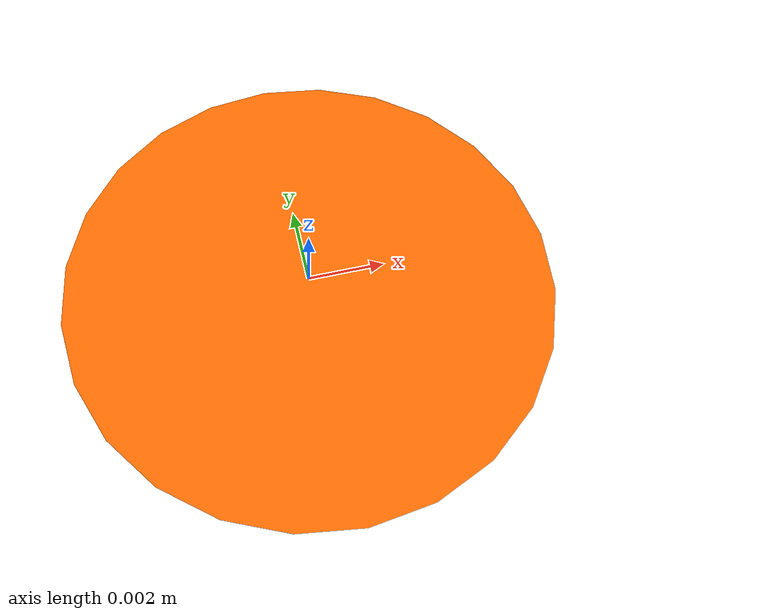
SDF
<?xml version='1.0' encoding='utf-8'?>
<sdf version='1.10'>
<model name='hose'>
  <link name='hose_link'>
    <enable_wind>false</enable_wind>
    <collision name='hose_collision'>
      <geometry><cylinder>
        <radius>0.00635</radius>
        <length>0</length>
      </cylinder></geometry>
      <surface>
        <friction><ode/></friction>
        <bounce/>
        <contact/>
      </surface>
    </collision>
    <visual name='hose_visual'>
      <geometry><cylinder>
        <radius>0.00635</radius>
        <length>0</length>
      </cylinder></geometry>
      <!-- EDITAL -->
      <material><ambient>1 0.3984375 0</ambient><diffuse>1 0.3984375 0</diffuse><specular>1 0.3984375 0</specular></material>
      <!-- EDITAL -->

    </visual>
  </link>
  <self_collide>false</self_collide>
  <static>true</static>

</model>
</sdf>
